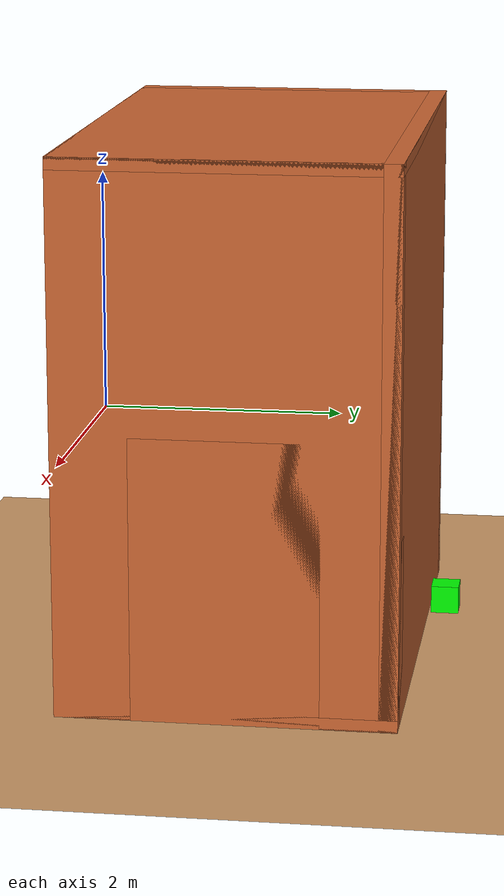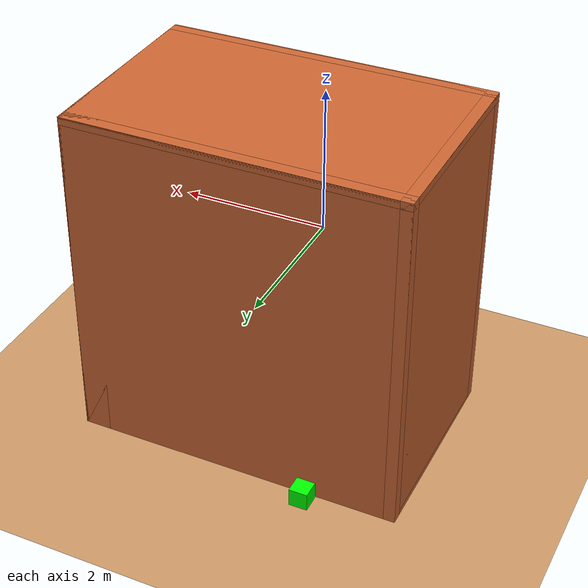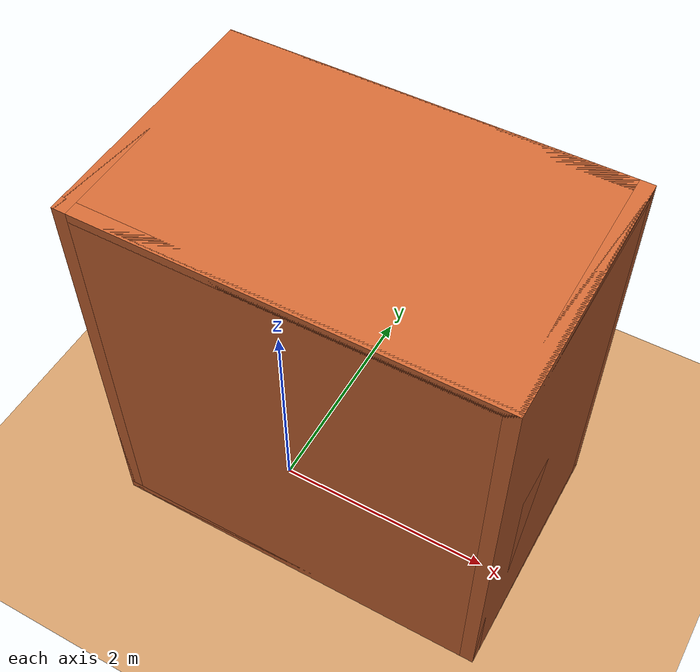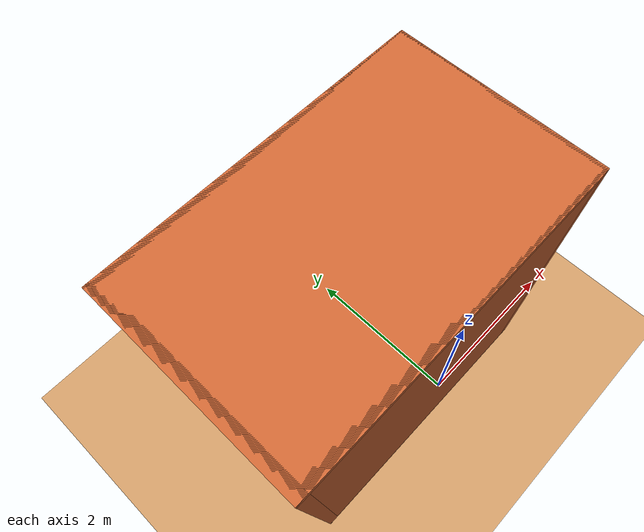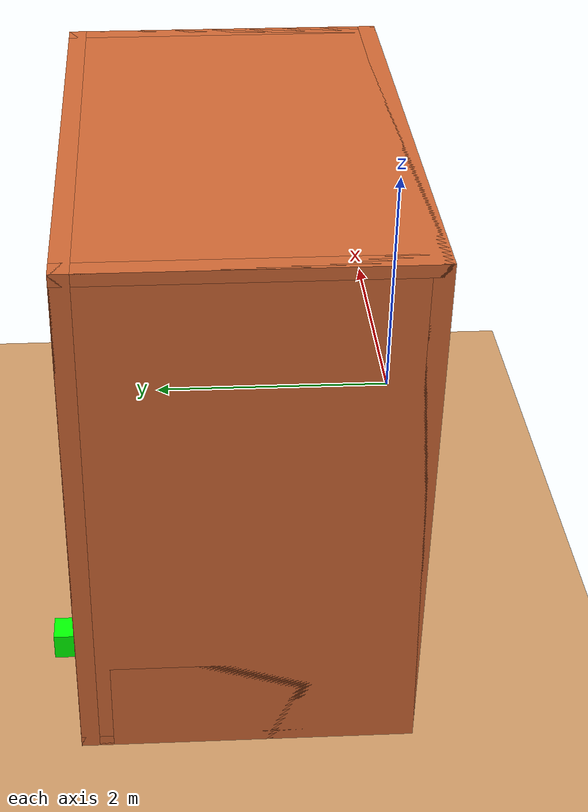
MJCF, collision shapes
<mujoco model="reconstructed_living_room">
    <compiler angle="degree" coordinate="local" inertiafromgeom="true"/>

    <option integrator="RK4" timestep="0.002"/>

    <default>
        <geom friction="2.0 0.5 0.5" rgba="0.8 0.6 0.4 1"/>
        <joint damping="0.8" armature="0.01"/>
        <velocity ctrlrange="-20 20" ctrllimited="true" kv="8"/>
    </default>

    <asset>
        <!-- Textured 3D Mesh of Scanned Room (Visual Only) -->
        <mesh name="room_visual_mesh" file="reconstructed_scene/Living room 01.obj"/>
        <texture name="room_texture" type="2d" file="reconstructed_scene/Living room 01.png"/>
        <material name="room_material" texture="room_texture"/>

        <!-- Standard Floor Grid Asset -->
        <texture name="grid" type="2d" builtin="checker" rgb1=".1 .2 .3" rgb2=".2 .3 .4" width="300" height="300" mark="edge" markrgb=".2 .3 .4"/>
        <material name="grid" texture="grid" texrepeat="2 2" texuniform="true"/>
    </asset>

    <worldbody>
        <light directional="true" diffuse=".8 .8 .8" specular=".2 .2 .2" pos="0 0 5" dir="0 0 -1"/>

        <!-- 1. Visual-Only Room Mesh (Conclass and Contype disabled) -->
        <geom name="room_mesh_visual" type="mesh" mesh="room_visual_mesh" material="room_material" group="1" contype="0" conaffinity="0"/>

        <!-- 2. Physical Floor Collider (Spawned at Z_min) -->
        <geom name="floor_collider" type="plane" pos="0 0 -2.018" size="15 15 0.1" material="grid" friction="2 0.5 0.5" contype="1" conaffinity="1"/>

        <!-- 3. Dynamic Targets (Red Ball and Green Cube) -->
        <body name="red_ball" pos="0.97 2.34 -1.87">
            <geom type="sphere" size="0.15" rgba="1 0 0 1" friction="1 0.5 0.5"/>
        </body>

        <body name="green_cube" pos="-1.03 2.84 -1.90">
            <geom type="box" size="0.12 0.12 0.12" rgba="0 1 0 1" friction="1 0.5 0.5"/>
        </body>

        <!-- Obstacle: sofa -->
        <body name="obstacle_sofa_0" pos="-1.710 1.333 -1.593">
            <geom type="box" size="0.475 1.100 0.425" rgba="0.8 0.4 0.2 0.4" group="0" contype="1" conaffinity="1"/>
        </body>
        <!-- Obstacle: wall -->
        <body name="obstacle_wall_1" pos="-2.110 1.333 0.217">
            <geom type="box" size="0.075 1.365 2.235" rgba="0.8 0.4 0.2 0.4" group="0" contype="1" conaffinity="1"/>
        </body>
        <!-- Obstacle: wall -->
        <body name="obstacle_wall_2" pos="2.040 1.333 0.217">
            <geom type="box" size="0.075 1.365 2.235" rgba="0.8 0.4 0.2 0.4" group="0" contype="1" conaffinity="1"/>
        </body>
        <!-- Obstacle: wall -->
        <body name="obstacle_wall_3" pos="-0.035 0.043 0.217">
            <geom type="box" size="2.150 0.075 2.235" rgba="0.8 0.4 0.2 0.4" group="0" contype="1" conaffinity="1"/>
        </body>
        <!-- Obstacle: wall -->
        <body name="obstacle_wall_4" pos="-0.035 2.623 0.217">
            <geom type="box" size="2.150 0.075 2.235" rgba="0.8 0.4 0.2 0.4" group="0" contype="1" conaffinity="1"/>
        </body>
        <!-- Obstacle: door -->
        <body name="obstacle_door_5" pos="-0.005 0.998 -0.993">
            <geom type="box" size="0.025 0.450 1.025" rgba="0.8 0.4 0.2 0.4" group="0" contype="1" conaffinity="1"/>
        </body>
        <!-- Obstacle: curtains -->
        <body name="obstacle_curtains_6" pos="2.065 1.333 -0.868">
            <geom type="box" size="0.050 0.750 1.150" rgba="0.8 0.4 0.2 0.4" group="0" contype="1" conaffinity="1"/>
        </body>
        <!-- Obstacle: shelf_unit -->
        <body name="obstacle_shelf_unit_7" pos="1.940 2.198 -1.268">
            <geom type="box" size="0.175 0.500 0.750" rgba="0.8 0.4 0.2 0.4" group="0" contype="1" conaffinity="1"/>
        </body>
        <!-- Obstacle: floor -->
        <body name="obstacle_floor_8" pos="-0.035 1.333 -1.968">
            <geom type="box" size="2.150 1.365 0.050" rgba="0.8 0.4 0.2 0.4" group="0" contype="1" conaffinity="1"/>
        </body>
        <!-- Obstacle: ceiling -->
        <body name="obstacle_ceiling_9" pos="-0.035 1.333 2.402">
            <geom type="box" size="2.150 1.365 0.050" rgba="0.8 0.4 0.2 0.4" group="0" contype="1" conaffinity="1"/>
        </body>
        <!-- Wheeled Robot (Spawned in free center space) -->
        <body name="robot" pos="-0.035 1.338 -1.918">
            <joint type="free"/>
            <geom name="chassis" type="box" size="0.2 0.15 0.05" rgba="0.2 0.2 0.8 1"/>

            <!-- Camera (Look Forward +X, Up is +Z, Right is -Y) -->
            <camera name="robot_eye" pos="0.18 0 0.08" fovy="75" xyaxes="0 -1 0 0 0 1"/>
            <!-- Visual Camera Eye (Black Lens) -->
            <geom name="camera_lens" type="sphere" pos="0.18 0 0.08" size="0.025" rgba="0.1 0.1 0.1 1"/>
            <geom name="camera_mount" type="box" pos="0.17 0 0.08" size="0.01 0.02 0.02" rgba="0.5 0.5 0.5 1"/>

            <!-- Wheels -->
            <body name="front_left" pos="0.14 0.17 -0.05">
                <joint name="fl_joint" type="hinge" axis="0 1 0"/>
                <geom type="cylinder" size="0.05 0.015" euler="90 0 0" rgba="0.1 0.1 0.1 1"/>
            </body>
            <body name="front_right" pos="0.14 -0.17 -0.05">
                <joint name="fr_joint" type="hinge" axis="0 1 0"/>
                <geom type="cylinder" size="0.05 0.015" euler="90 0 0" rgba="0.1 0.1 0.1 1"/>
            </body>
            <body name="rear_left" pos="-0.14 0.17 -0.05">
                <joint name="rl_joint" type="hinge" axis="0 1 0"/>
                <geom type="cylinder" size="0.05 0.015" euler="90 0 0" rgba="0.1 0.1 0.1 1"/>
            </body>
            <body name="rear_right" pos="-0.14 -0.17 -0.05">
                <joint name="rr_joint" type="hinge" axis="0 1 0"/>
                <geom type="cylinder" size="0.05 0.015" euler="90 0 0" rgba="0.1 0.1 0.1 1"/>
            </body>
        </body>
    </worldbody>

    <actuator>
        <velocity name="drive_fl" joint="fl_joint"/>
        <velocity name="drive_fr" joint="fr_joint"/>
        <velocity name="drive_rl" joint="rl_joint"/>
        <velocity name="drive_rr" joint="rr_joint"/>
    </actuator>
</mujoco>
